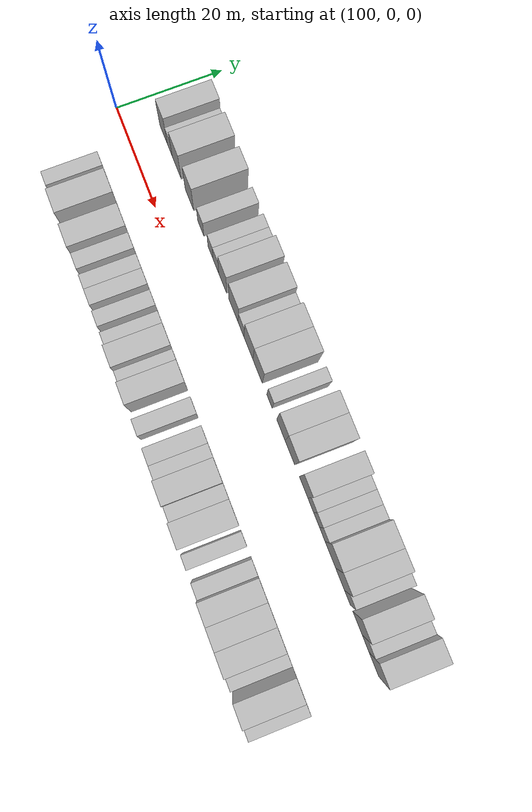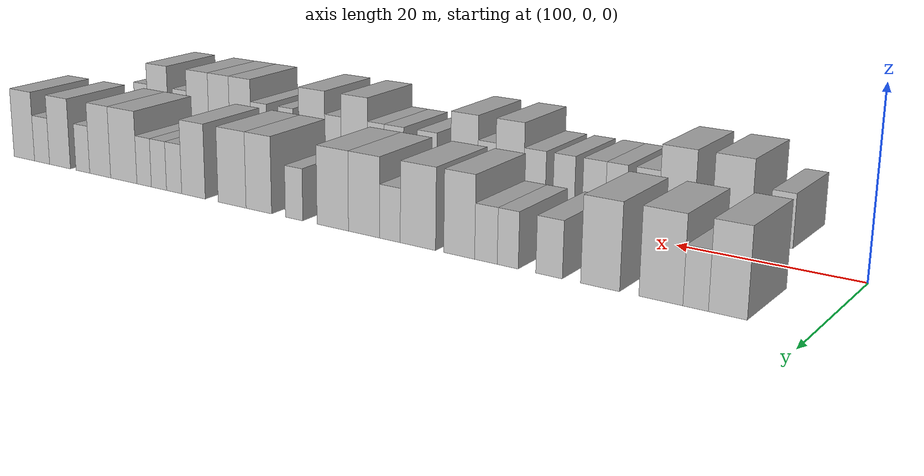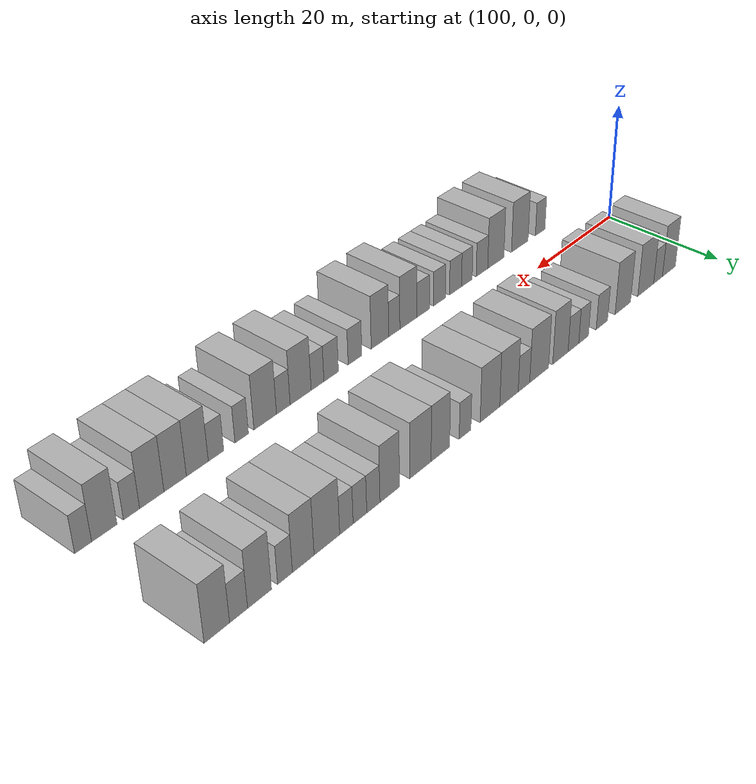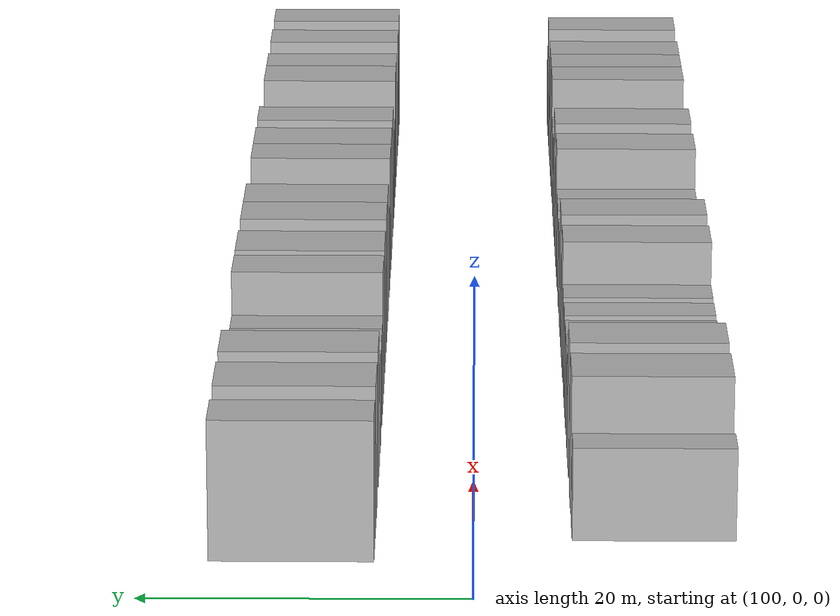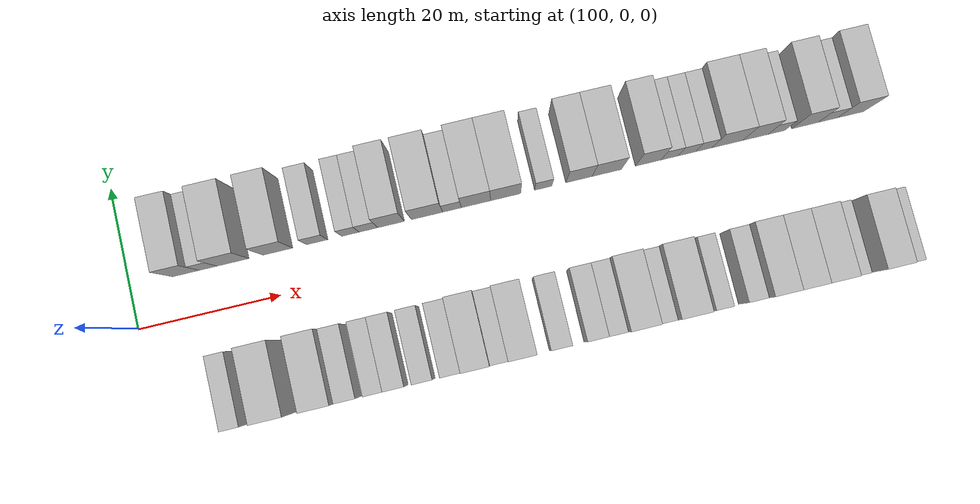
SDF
<sdf version="1.6">
 <world name="default">
  <model name="building_26">
   <static>1</static>
   <pose>107.8784 11.0000 0 0.000000 0.000000 1.570796</pose>
   <link name="link">
    <pose>0 0 4.50 0 0 0</pose>
    <collision name="collision"><geometry><box><size>10.0000 3.7609 9.0000</size></box></geometry></collision>
    <visual name="visual">
     <cast_shadows>0</cast_shadows>
     <geometry><box><size>10.0000 3.7609 9.0000</size></box></geometry>
     <material>
      <script>
       <uri>model://HANNAS_wall/materials/scripts</uri>
       <uri>model://HANNAS_wall/materials/textures</uri>
       <name>vrc/HANNAS_wall</name>
      </script>
     </material>
    </visual>
   </link>
  </model>
  <model name="building_27">
   <static>1</static>
   <pose>111.0178 11.0000 0 0.000000 0.000000 1.570796</pose>
   <link name="link">
    <pose>0 0 3.00 0 0 0</pose>
    <collision name="collision"><geometry><box><size>10.0000 2.5179 6.0000</size></box></geometry></collision>
    <visual name="visual">
     <cast_shadows>0</cast_shadows>
     <geometry><box><size>10.0000 2.5179 6.0000</size></box></geometry>
     <material>
      <script>
       <uri>model://HANNAS_wall/materials/scripts</uri>
       <uri>model://HANNAS_wall/materials/textures</uri>
       <name>vrc/HANNAS_wall</name>
      </script>
     </material>
    </visual>
   </link>
  </model>
  <model name="building_28">
   <static>1</static>
   <pose>114.5149 11.0000 0 0.000000 0.000000 1.570796</pose>
   <link name="link">
    <pose>0 0 4.50 0 0 0</pose>
    <collision name="collision"><geometry><box><size>10.0000 4.4763 9.0000</size></box></geometry></collision>
    <visual name="visual">
     <cast_shadows>0</cast_shadows>
     <geometry><box><size>10.0000 4.4763 9.0000</size></box></geometry>
     <material>
      <script>
       <uri>model://HANNAS_wall/materials/scripts</uri>
       <uri>model://HANNAS_wall/materials/textures</uri>
       <name>vrc/HANNAS_wall</name>
      </script>
     </material>
    </visual>
   </link>
  </model>
  <model name="building_29">
   <static>1</static>
   <pose>120.8508 11.0000 0 0.000000 0.000000 1.570796</pose>
   <link name="link">
    <pose>0 0 4.50 0 0 0</pose>
    <collision name="collision"><geometry><box><size>10.0000 4.1954 9.0000</size></box></geometry></collision>
    <visual name="visual">
     <cast_shadows>0</cast_shadows>
     <geometry><box><size>10.0000 4.1954 9.0000</size></box></geometry>
     <material>
      <script>
       <uri>model://HANNAS_wall/materials/scripts</uri>
       <uri>model://HANNAS_wall/materials/textures</uri>
       <name>vrc/HANNAS_wall</name>
      </script>
     </material>
    </visual>
   </link>
  </model>
  <model name="building_30">
   <static>1</static>
   <pose>126.4411 11.0000 0 0.000000 0.000000 1.570796</pose>
   <link name="link">
    <pose>0 0 3.00 0 0 0</pose>
    <collision name="collision"><geometry><box><size>10.0000 2.9852 6.0000</size></box></geometry></collision>
    <visual name="visual">
     <cast_shadows>0</cast_shadows>
     <geometry><box><size>10.0000 2.9852 6.0000</size></box></geometry>
     <material>
      <script>
       <uri>model://HANNAS_wall/materials/scripts</uri>
       <uri>model://HANNAS_wall/materials/textures</uri>
       <name>vrc/HANNAS_wall</name>
      </script>
     </material>
    </visual>
   </link>
  </model>
  <model name="building_31">
   <static>1</static>
   <pose>131.1621 11.0000 0 0.000000 0.000000 1.570796</pose>
   <link name="link">
    <pose>0 0 3.00 0 0 0</pose>
    <collision name="collision"><geometry><box><size>10.0000 2.4568 6.0000</size></box></geometry></collision>
    <visual name="visual">
     <cast_shadows>0</cast_shadows>
     <geometry><box><size>10.0000 2.4568 6.0000</size></box></geometry>
     <material>
      <script>
       <uri>model://HANNAS_wall/materials/scripts</uri>
       <uri>model://HANNAS_wall/materials/textures</uri>
       <name>vrc/HANNAS_wall</name>
      </script>
     </material>
    </visual>
   </link>
  </model>
  <model name="building_32">
   <static>1</static>
   <pose>133.7287 11.0000 0 0.000000 0.000000 1.570796</pose>
   <link name="link">
    <pose>0 0 3.00 0 0 0</pose>
    <collision name="collision"><geometry><box><size>10.0000 2.6765 6.0000</size></box></geometry></collision>
    <visual name="visual">
     <cast_shadows>0</cast_shadows>
     <geometry><box><size>10.0000 2.6765 6.0000</size></box></geometry>
     <material>
      <script>
       <uri>model://HANNAS_wall/materials/scripts</uri>
       <uri>model://HANNAS_wall/materials/textures</uri>
       <name>vrc/HANNAS_wall</name>
      </script>
     </material>
    </visual>
   </link>
  </model>
  <model name="building_33">
   <static>1</static>
   <pose>136.9477 11.0000 0 0.000000 0.000000 1.570796</pose>
   <link name="link">
    <pose>0 0 4.50 0 0 0</pose>
    <collision name="collision"><geometry><box><size>10.0000 3.7616 9.0000</size></box></geometry></collision>
    <visual name="visual">
     <cast_shadows>0</cast_shadows>
     <geometry><box><size>10.0000 3.7616 9.0000</size></box></geometry>
     <material>
      <script>
       <uri>model://HANNAS_wall/materials/scripts</uri>
       <uri>model://HANNAS_wall/materials/textures</uri>
       <name>vrc/HANNAS_wall</name>
      </script>
     </material>
    </visual>
   </link>
  </model>
  <model name="building_34">
   <static>1</static>
   <pose>142.0647 11.0000 0 0.000000 0.000000 1.570796</pose>
   <link name="link">
    <pose>0 0 4.50 0 0 0</pose>
    <collision name="collision"><geometry><box><size>10.0000 4.4724 9.0000</size></box></geometry></collision>
    <visual name="visual">
     <cast_shadows>0</cast_shadows>
     <geometry><box><size>10.0000 4.4724 9.0000</size></box></geometry>
     <material>
      <script>
       <uri>model://HANNAS_wall/materials/scripts</uri>
       <uri>model://HANNAS_wall/materials/textures</uri>
       <name>vrc/HANNAS_wall</name>
      </script>
     </material>
    </visual>
   </link>
  </model>
  <model name="building_35">
   <static>1</static>
   <pose>145.6318 11.0000 0 0.000000 0.000000 1.570796</pose>
   <link name="link">
    <pose>0 0 3.00 0 0 0</pose>
    <collision name="collision"><geometry><box><size>10.0000 2.6618 6.0000</size></box></geometry></collision>
    <visual name="visual">
     <cast_shadows>0</cast_shadows>
     <geometry><box><size>10.0000 2.6618 6.0000</size></box></geometry>
     <material>
      <script>
       <uri>model://HANNAS_wall/materials/scripts</uri>
       <uri>model://HANNAS_wall/materials/textures</uri>
       <name>vrc/HANNAS_wall</name>
      </script>
     </material>
    </visual>
   </link>
  </model>
  <model name="building_36">
   <static>1</static>
   <pose>149.0481 11.0000 0 0.000000 0.000000 1.570796</pose>
   <link name="link">
    <pose>0 0 4.50 0 0 0</pose>
    <collision name="collision"><geometry><box><size>10.0000 4.1709 9.0000</size></box></geometry></collision>
    <visual name="visual">
     <cast_shadows>0</cast_shadows>
     <geometry><box><size>10.0000 4.1709 9.0000</size></box></geometry>
     <material>
      <script>
       <uri>model://HANNAS_wall/materials/scripts</uri>
       <uri>model://HANNAS_wall/materials/textures</uri>
       <name>vrc/HANNAS_wall</name>
      </script>
     </material>
    </visual>
   </link>
  </model>
  <model name="building_37">
   <static>1</static>
   <pose>153.2878 11.0000 0 0.000000 0.000000 1.570796</pose>
   <link name="link">
    <pose>0 0 4.50 0 0 0</pose>
    <collision name="collision"><geometry><box><size>10.0000 4.3086 9.0000</size></box></geometry></collision>
    <visual name="visual">
     <cast_shadows>0</cast_shadows>
     <geometry><box><size>10.0000 4.3086 9.0000</size></box></geometry>
     <material>
      <script>
       <uri>model://HANNAS_wall/materials/scripts</uri>
       <uri>model://HANNAS_wall/materials/textures</uri>
       <name>vrc/HANNAS_wall</name>
      </script>
     </material>
    </visual>
   </link>
  </model>
  <model name="building_38">
   <static>1</static>
   <pose>158.6836 11.0000 0 0.000000 0.000000 1.570796</pose>
   <link name="link">
    <pose>0 0 3.00 0 0 0</pose>
    <collision name="collision"><geometry><box><size>10.0000 2.4830 6.0000</size></box></geometry></collision>
    <visual name="visual">
     <cast_shadows>0</cast_shadows>
     <geometry><box><size>10.0000 2.4830 6.0000</size></box></geometry>
     <material>
      <script>
       <uri>model://HANNAS_wall/materials/scripts</uri>
       <uri>model://HANNAS_wall/materials/textures</uri>
       <name>vrc/HANNAS_wall</name>
      </script>
     </material>
    </visual>
   </link>
  </model>
  <model name="building_39">
   <static>1</static>
   <pose>163.8151 11.0000 0 0.000000 0.000000 1.570796</pose>
   <link name="link">
    <pose>0 0 4.50 0 0 0</pose>
    <collision name="collision"><geometry><box><size>10.0000 3.7801 9.0000</size></box></geometry></collision>
    <visual name="visual">
     <cast_shadows>0</cast_shadows>
     <geometry><box><size>10.0000 3.7801 9.0000</size></box></geometry>
     <material>
      <script>
       <uri>model://HANNAS_wall/materials/scripts</uri>
       <uri>model://HANNAS_wall/materials/textures</uri>
       <name>vrc/HANNAS_wall</name>
      </script>
     </material>
    </visual>
   </link>
  </model>
  <model name="building_40">
   <static>1</static>
   <pose>167.8277 11.0000 0 0.000000 0.000000 1.570796</pose>
   <link name="link">
    <pose>0 0 4.50 0 0 0</pose>
    <collision name="collision"><geometry><box><size>10.0000 4.2450 9.0000</size></box></geometry></collision>
    <visual name="visual">
     <cast_shadows>0</cast_shadows>
     <geometry><box><size>10.0000 4.2450 9.0000</size></box></geometry>
     <material>
      <script>
       <uri>model://HANNAS_wall/materials/scripts</uri>
       <uri>model://HANNAS_wall/materials/textures</uri>
       <name>vrc/HANNAS_wall</name>
      </script>
     </material>
    </visual>
   </link>
  </model>
  <model name="building_41">
   <static>1</static>
   <pose>173.8152 11.0000 0 0.000000 0.000000 1.570796</pose>
   <link name="link">
    <pose>0 0 4.50 0 0 0</pose>
    <collision name="collision"><geometry><box><size>10.0000 3.7300 9.0000</size></box></geometry></collision>
    <visual name="visual">
     <cast_shadows>0</cast_shadows>
     <geometry><box><size>10.0000 3.7300 9.0000</size></box></geometry>
     <material>
      <script>
       <uri>model://HANNAS_wall/materials/scripts</uri>
       <uri>model://HANNAS_wall/materials/textures</uri>
       <name>vrc/HANNAS_wall</name>
      </script>
     </material>
    </visual>
   </link>
  </model>
  <model name="building_42">
   <static>1</static>
   <pose>176.9100 11.0000 0 0.000000 0.000000 1.570796</pose>
   <link name="link">
    <pose>0 0 3.00 0 0 0</pose>
    <collision name="collision"><geometry><box><size>10.0000 2.4594 6.0000</size></box></geometry></collision>
    <visual name="visual">
     <cast_shadows>0</cast_shadows>
     <geometry><box><size>10.0000 2.4594 6.0000</size></box></geometry>
     <material>
      <script>
       <uri>model://HANNAS_wall/materials/scripts</uri>
       <uri>model://HANNAS_wall/materials/textures</uri>
       <name>vrc/HANNAS_wall</name>
      </script>
     </material>
    </visual>
   </link>
  </model>
  <model name="building_43">
   <static>1</static>
   <pose>179.3808 11.0000 0 0.000000 0.000000 1.570796</pose>
   <link name="link">
    <pose>0 0 3.00 0 0 0</pose>
    <collision name="collision"><geometry><box><size>10.0000 2.4823 6.0000</size></box></geometry></collision>
    <visual name="visual">
     <cast_shadows>0</cast_shadows>
     <geometry><box><size>10.0000 2.4823 6.0000</size></box></geometry>
     <material>
      <script>
       <uri>model://HANNAS_wall/materials/scripts</uri>
       <uri>model://HANNAS_wall/materials/textures</uri>
       <name>vrc/HANNAS_wall</name>
      </script>
     </material>
    </visual>
   </link>
  </model>
  <model name="building_44">
   <static>1</static>
   <pose>181.8322 11.0000 0 0.000000 0.000000 1.570796</pose>
   <link name="link">
    <pose>0 0 3.00 0 0 0</pose>
    <collision name="collision"><geometry><box><size>10.0000 2.4205 6.0000</size></box></geometry></collision>
    <visual name="visual">
     <cast_shadows>0</cast_shadows>
     <geometry><box><size>10.0000 2.4205 6.0000</size></box></geometry>
     <material>
      <script>
       <uri>model://HANNAS_wall/materials/scripts</uri>
       <uri>model://HANNAS_wall/materials/textures</uri>
       <name>vrc/HANNAS_wall</name>
      </script>
     </material>
    </visual>
   </link>
  </model>
  <model name="building_45">
   <static>1</static>
   <pose>185.2819 11.0000 0 0.000000 0.000000 1.570796</pose>
   <link name="link">
    <pose>0 0 4.50 0 0 0</pose>
    <collision name="collision"><geometry><box><size>10.0000 4.4789 9.0000</size></box></geometry></collision>
    <visual name="visual">
     <cast_shadows>0</cast_shadows>
     <geometry><box><size>10.0000 4.4789 9.0000</size></box></geometry>
     <material>
      <script>
       <uri>model://HANNAS_wall/materials/scripts</uri>
       <uri>model://HANNAS_wall/materials/textures</uri>
       <name>vrc/HANNAS_wall</name>
      </script>
     </material>
    </visual>
   </link>
  </model>
  <model name="building_46">
   <static>1</static>
   <pose>189.3593 11.0000 0 0.000000 0.000000 1.570796</pose>
   <link name="link">
    <pose>0 0 4.50 0 0 0</pose>
    <collision name="collision"><geometry><box><size>10.0000 3.6759 9.0000</size></box></geometry></collision>
    <visual name="visual">
     <cast_shadows>0</cast_shadows>
     <geometry><box><size>10.0000 3.6759 9.0000</size></box></geometry>
     <material>
      <script>
       <uri>model://HANNAS_wall/materials/scripts</uri>
       <uri>model://HANNAS_wall/materials/textures</uri>
       <name>vrc/HANNAS_wall</name>
      </script>
     </material>
    </visual>
   </link>
  </model>
  <model name="building_47">
   <static>1</static>
   <pose>192.4263 11.0000 0 0.000000 0.000000 1.570796</pose>
   <link name="link">
    <pose>0 0 3.00 0 0 0</pose>
    <collision name="collision"><geometry><box><size>10.0000 2.4582 6.0000</size></box></geometry></collision>
    <visual name="visual">
     <cast_shadows>0</cast_shadows>
     <geometry><box><size>10.0000 2.4582 6.0000</size></box></geometry>
     <material>
      <script>
       <uri>model://HANNAS_wall/materials/scripts</uri>
       <uri>model://HANNAS_wall/materials/textures</uri>
       <name>vrc/HANNAS_wall</name>
      </script>
     </material>
    </visual>
   </link>
  </model>
  <model name="building_48">
   <static>1</static>
   <pose>196.5684 11.0000 0 0.000000 0.000000 1.570796</pose>
   <link name="link">
    <pose>0 0 4.50 0 0 0</pose>
    <collision name="collision"><geometry><box><size>10.0000 3.8258 9.0000</size></box></geometry></collision>
    <visual name="visual">
     <cast_shadows>0</cast_shadows>
     <geometry><box><size>10.0000 3.8258 9.0000</size></box></geometry>
     <material>
      <script>
       <uri>model://HANNAS_wall/materials/scripts</uri>
       <uri>model://HANNAS_wall/materials/textures</uri>
       <name>vrc/HANNAS_wall</name>
      </script>
     </material>
    </visual>
   </link>
  </model>
  <model name="building_49">
   <static>1</static>
   <pose>199.8844 11.0000 0 0.000000 0.000000 1.570796</pose>
   <link name="link">
    <pose>0 0 3.00 0 0 0</pose>
    <collision name="collision"><geometry><box><size>10.0000 2.8062 6.0000</size></box></geometry></collision>
    <visual name="visual">
     <cast_shadows>0</cast_shadows>
     <geometry><box><size>10.0000 2.8062 6.0000</size></box></geometry>
     <material>
      <script>
       <uri>model://HANNAS_wall/materials/scripts</uri>
       <uri>model://HANNAS_wall/materials/textures</uri>
       <name>vrc/HANNAS_wall</name>
      </script>
     </material>
    </visual>
   </link>
  </model>
  <model name="building_50">
   <static>1</static>
   <pose>203.2325 11.0000 0 0.000000 0.000000 1.570796</pose>
   <link name="link">
    <pose>0 0 4.50 0 0 0</pose>
    <collision name="collision"><geometry><box><size>10.0000 3.8901 9.0000</size></box></geometry></collision>
    <visual name="visual">
     <cast_shadows>0</cast_shadows>
     <geometry><box><size>10.0000 3.8901 9.0000</size></box></geometry>
     <material>
      <script>
       <uri>model://HANNAS_wall/materials/scripts</uri>
       <uri>model://HANNAS_wall/materials/textures</uri>
       <name>vrc/HANNAS_wall</name>
      </script>
     </material>
    </visual>
   </link>
  </model>
  <model name="building_76">
   <static>1</static>
   <pose>110.9872 -11.0000 0 0.000000 0.000000 1.570796</pose>
   <link name="link">
    <pose>0 0 3.00 0 0 0</pose>
    <collision name="collision"><geometry><box><size>10.0000 2.6245 6.0000</size></box></geometry></collision>
    <visual name="visual">
     <cast_shadows>0</cast_shadows>
     <geometry><box><size>10.0000 2.6245 6.0000</size></box></geometry>
     <material>
      <script>
       <uri>model://HANNAS_wall/materials/scripts</uri>
       <uri>model://HANNAS_wall/materials/textures</uri>
       <name>vrc/HANNAS_wall</name>
      </script>
     </material>
    </visual>
   </link>
  </model>
  <model name="building_77">
   <static>1</static>
   <pose>116.5064 -11.0000 0 0.000000 0.000000 1.570796</pose>
   <link name="link">
    <pose>0 0 4.50 0 0 0</pose>
    <collision name="collision"><geometry><box><size>10.0000 4.4139 9.0000</size></box></geometry></collision>
    <visual name="visual">
     <cast_shadows>0</cast_shadows>
     <geometry><box><size>10.0000 4.4139 9.0000</size></box></geometry>
     <material>
      <script>
       <uri>model://HANNAS_wall/materials/scripts</uri>
       <uri>model://HANNAS_wall/materials/textures</uri>
       <name>vrc/HANNAS_wall</name>
      </script>
     </material>
    </visual>
   </link>
  </model>
  <model name="building_78">
   <static>1</static>
   <pose>122.7905 -11.0000 0 0.000000 0.000000 1.570796</pose>
   <link name="link">
    <pose>0 0 4.50 0 0 0</pose>
    <collision name="collision"><geometry><box><size>10.0000 4.1544 9.0000</size></box></geometry></collision>
    <visual name="visual">
     <cast_shadows>0</cast_shadows>
     <geometry><box><size>10.0000 4.1544 9.0000</size></box></geometry>
     <material>
      <script>
       <uri>model://HANNAS_wall/materials/scripts</uri>
       <uri>model://HANNAS_wall/materials/textures</uri>
       <name>vrc/HANNAS_wall</name>
      </script>
     </material>
    </visual>
   </link>
  </model>
  <model name="building_79">
   <static>1</static>
   <pose>126.3232 -11.0000 0 0.000000 0.000000 1.570796</pose>
   <link name="link">
    <pose>0 0 3.00 0 0 0</pose>
    <collision name="collision"><geometry><box><size>10.0000 2.9110 6.0000</size></box></geometry></collision>
    <visual name="visual">
     <cast_shadows>0</cast_shadows>
     <geometry><box><size>10.0000 2.9110 6.0000</size></box></geometry>
     <material>
      <script>
       <uri>model://HANNAS_wall/materials/scripts</uri>
       <uri>model://HANNAS_wall/materials/textures</uri>
       <name>vrc/HANNAS_wall</name>
      </script>
     </material>
    </visual>
   </link>
  </model>
  <model name="building_80">
   <static>1</static>
   <pose>130.0869 -11.0000 0 0.000000 0.000000 1.570796</pose>
   <link name="link">
    <pose>0 0 3.00 0 0 0</pose>
    <collision name="collision"><geometry><box><size>10.0000 2.6163 6.0000</size></box></geometry></collision>
    <visual name="visual">
     <cast_shadows>0</cast_shadows>
     <geometry><box><size>10.0000 2.6163 6.0000</size></box></geometry>
     <material>
      <script>
       <uri>model://HANNAS_wall/materials/scripts</uri>
       <uri>model://HANNAS_wall/materials/textures</uri>
       <name>vrc/HANNAS_wall</name>
      </script>
     </material>
    </visual>
   </link>
  </model>
  <model name="building_81">
   <static>1</static>
   <pose>132.8507 -11.0000 0 0.000000 0.000000 1.570796</pose>
   <link name="link">
    <pose>0 0 3.00 0 0 0</pose>
    <collision name="collision"><geometry><box><size>10.0000 2.9112 6.0000</size></box></geometry></collision>
    <visual name="visual">
     <cast_shadows>0</cast_shadows>
     <geometry><box><size>10.0000 2.9112 6.0000</size></box></geometry>
     <material>
      <script>
       <uri>model://HANNAS_wall/materials/scripts</uri>
       <uri>model://HANNAS_wall/materials/textures</uri>
       <name>vrc/HANNAS_wall</name>
      </script>
     </material>
    </visual>
   </link>
  </model>
  <model name="building_82">
   <static>1</static>
   <pose>136.6994 -11.0000 0 0.000000 0.000000 1.570796</pose>
   <link name="link">
    <pose>0 0 3.00 0 0 0</pose>
    <collision name="collision"><geometry><box><size>10.0000 2.7862 6.0000</size></box></geometry></collision>
    <visual name="visual">
     <cast_shadows>0</cast_shadows>
     <geometry><box><size>10.0000 2.7862 6.0000</size></box></geometry>
     <material>
      <script>
       <uri>model://HANNAS_wall/materials/scripts</uri>
       <uri>model://HANNAS_wall/materials/textures</uri>
       <name>vrc/HANNAS_wall</name>
      </script>
     </material>
    </visual>
   </link>
  </model>
  <model name="building_83">
   <static>1</static>
   <pose>140.5440 -11.0000 0 0.000000 0.000000 1.570796</pose>
   <link name="link">
    <pose>0 0 3.00 0 0 0</pose>
    <collision name="collision"><geometry><box><size>10.0000 2.9031 6.0000</size></box></geometry></collision>
    <visual name="visual">
     <cast_shadows>0</cast_shadows>
     <geometry><box><size>10.0000 2.9031 6.0000</size></box></geometry>
     <material>
      <script>
       <uri>model://HANNAS_wall/materials/scripts</uri>
       <uri>model://HANNAS_wall/materials/textures</uri>
       <name>vrc/HANNAS_wall</name>
      </script>
     </material>
    </visual>
   </link>
  </model>
  <model name="building_84">
   <static>1</static>
   <pose>143.9150 -11.0000 0 0.000000 0.000000 1.570796</pose>
   <link name="link">
    <pose>0 0 4.50 0 0 0</pose>
    <collision name="collision"><geometry><box><size>10.0000 3.8388 9.0000</size></box></geometry></collision>
    <visual name="visual">
     <cast_shadows>0</cast_shadows>
     <geometry><box><size>10.0000 3.8388 9.0000</size></box></geometry>
     <material>
      <script>
       <uri>model://HANNAS_wall/materials/scripts</uri>
       <uri>model://HANNAS_wall/materials/textures</uri>
       <name>vrc/HANNAS_wall</name>
      </script>
     </material>
    </visual>
   </link>
  </model>
  <model name="building_85">
   <static>1</static>
   <pose>147.0641 -11.0000 0 0.000000 0.000000 1.570796</pose>
   <link name="link">
    <pose>0 0 3.00 0 0 0</pose>
    <collision name="collision"><geometry><box><size>10.0000 2.4593 6.0000</size></box></geometry></collision>
    <visual name="visual">
     <cast_shadows>0</cast_shadows>
     <geometry><box><size>10.0000 2.4593 6.0000</size></box></geometry>
     <material>
      <script>
       <uri>model://HANNAS_wall/materials/scripts</uri>
       <uri>model://HANNAS_wall/materials/textures</uri>
       <name>vrc/HANNAS_wall</name>
      </script>
     </material>
    </visual>
   </link>
  </model>
  <model name="building_86">
   <static>1</static>
   <pose>150.2099 -11.0000 0 0.000000 0.000000 1.570796</pose>
   <link name="link">
    <pose>0 0 4.50 0 0 0</pose>
    <collision name="collision"><geometry><box><size>10.0000 3.8323 9.0000</size></box></geometry></collision>
    <visual name="visual">
     <cast_shadows>0</cast_shadows>
     <geometry><box><size>10.0000 3.8323 9.0000</size></box></geometry>
     <material>
      <script>
       <uri>model://HANNAS_wall/materials/scripts</uri>
       <uri>model://HANNAS_wall/materials/textures</uri>
       <name>vrc/HANNAS_wall</name>
      </script>
     </material>
    </visual>
   </link>
  </model>
  <model name="building_87">
   <static>1</static>
   <pose>155.5781 -11.0000 0 0.000000 0.000000 1.570796</pose>
   <link name="link">
    <pose>0 0 3.00 0 0 0</pose>
    <collision name="collision"><geometry><box><size>10.0000 2.9042 6.0000</size></box></geometry></collision>
    <visual name="visual">
     <cast_shadows>0</cast_shadows>
     <geometry><box><size>10.0000 2.9042 6.0000</size></box></geometry>
     <material>
      <script>
       <uri>model://HANNAS_wall/materials/scripts</uri>
       <uri>model://HANNAS_wall/materials/textures</uri>
       <name>vrc/HANNAS_wall</name>
      </script>
     </material>
    </visual>
   </link>
  </model>
  <model name="building_88">
   <static>1</static>
   <pose>160.5120 -11.0000 0 0.000000 0.000000 1.570796</pose>
   <link name="link">
    <pose>0 0 3.00 0 0 0</pose>
    <collision name="collision"><geometry><box><size>10.0000 2.9636 6.0000</size></box></geometry></collision>
    <visual name="visual">
     <cast_shadows>0</cast_shadows>
     <geometry><box><size>10.0000 2.9636 6.0000</size></box></geometry>
     <material>
      <script>
       <uri>model://HANNAS_wall/materials/scripts</uri>
       <uri>model://HANNAS_wall/materials/textures</uri>
       <name>vrc/HANNAS_wall</name>
      </script>
     </material>
    </visual>
   </link>
  </model>
  <model name="building_89">
   <static>1</static>
   <pose>163.2704 -11.0000 0 0.000000 0.000000 1.570796</pose>
   <link name="link">
    <pose>0 0 3.00 0 0 0</pose>
    <collision name="collision"><geometry><box><size>10.0000 2.5533 6.0000</size></box></geometry></collision>
    <visual name="visual">
     <cast_shadows>0</cast_shadows>
     <geometry><box><size>10.0000 2.5533 6.0000</size></box></geometry>
     <material>
      <script>
       <uri>model://HANNAS_wall/materials/scripts</uri>
       <uri>model://HANNAS_wall/materials/textures</uri>
       <name>vrc/HANNAS_wall</name>
      </script>
     </material>
    </visual>
   </link>
  </model>
  <model name="building_90">
   <static>1</static>
   <pose>166.6089 -11.0000 0 0.000000 0.000000 1.570796</pose>
   <link name="link">
    <pose>0 0 4.50 0 0 0</pose>
    <collision name="collision"><geometry><box><size>10.0000 4.1235 9.0000</size></box></geometry></collision>
    <visual name="visual">
     <cast_shadows>0</cast_shadows>
     <geometry><box><size>10.0000 4.1235 9.0000</size></box></geometry>
     <material>
      <script>
       <uri>model://HANNAS_wall/materials/scripts</uri>
       <uri>model://HANNAS_wall/materials/textures</uri>
       <name>vrc/HANNAS_wall</name>
      </script>
     </material>
    </visual>
   </link>
  </model>
  <model name="building_91">
   <static>1</static>
   <pose>169.9734 -11.0000 0 0.000000 0.000000 1.570796</pose>
   <link name="link">
    <pose>0 0 3.00 0 0 0</pose>
    <collision name="collision"><geometry><box><size>10.0000 2.6056 6.0000</size></box></geometry></collision>
    <visual name="visual">
     <cast_shadows>0</cast_shadows>
     <geometry><box><size>10.0000 2.6056 6.0000</size></box></geometry>
     <material>
      <script>
       <uri>model://HANNAS_wall/materials/scripts</uri>
       <uri>model://HANNAS_wall/materials/textures</uri>
       <name>vrc/HANNAS_wall</name>
      </script>
     </material>
    </visual>
   </link>
  </model>
  <model name="building_92">
   <static>1</static>
   <pose>173.3949 -11.0000 0 0.000000 0.000000 1.570796</pose>
   <link name="link">
    <pose>0 0 4.50 0 0 0</pose>
    <collision name="collision"><geometry><box><size>10.0000 4.2375 9.0000</size></box></geometry></collision>
    <visual name="visual">
     <cast_shadows>0</cast_shadows>
     <geometry><box><size>10.0000 4.2375 9.0000</size></box></geometry>
     <material>
      <script>
       <uri>model://HANNAS_wall/materials/scripts</uri>
       <uri>model://HANNAS_wall/materials/textures</uri>
       <name>vrc/HANNAS_wall</name>
      </script>
     </material>
    </visual>
   </link>
  </model>
  <model name="building_93">
   <static>1</static>
   <pose>177.7394 -11.0000 0 0.000000 0.000000 1.570796</pose>
   <link name="link">
    <pose>0 0 3.00 0 0 0</pose>
    <collision name="collision"><geometry><box><size>10.0000 2.4515 6.0000</size></box></geometry></collision>
    <visual name="visual">
     <cast_shadows>0</cast_shadows>
     <geometry><box><size>10.0000 2.4515 6.0000</size></box></geometry>
     <material>
      <script>
       <uri>model://HANNAS_wall/materials/scripts</uri>
       <uri>model://HANNAS_wall/materials/textures</uri>
       <name>vrc/HANNAS_wall</name>
      </script>
     </material>
    </visual>
   </link>
  </model>
  <model name="building_94">
   <static>1</static>
   <pose>182.3251 -11.0000 0 0.000000 0.000000 1.570796</pose>
   <link name="link">
    <pose>0 0 3.00 0 0 0</pose>
    <collision name="collision"><geometry><box><size>10.0000 2.7198 6.0000</size></box></geometry></collision>
    <visual name="visual">
     <cast_shadows>0</cast_shadows>
     <geometry><box><size>10.0000 2.7198 6.0000</size></box></geometry>
     <material>
      <script>
       <uri>model://HANNAS_wall/materials/scripts</uri>
       <uri>model://HANNAS_wall/materials/textures</uri>
       <name>vrc/HANNAS_wall</name>
      </script>
     </material>
    </visual>
   </link>
  </model>
  <model name="building_95">
   <static>1</static>
   <pose>185.5699 -11.0000 0 0.000000 0.000000 1.570796</pose>
   <link name="link">
    <pose>0 0 4.50 0 0 0</pose>
    <collision name="collision"><geometry><box><size>10.0000 3.7698 9.0000</size></box></geometry></collision>
    <visual name="visual">
     <cast_shadows>0</cast_shadows>
     <geometry><box><size>10.0000 3.7698 9.0000</size></box></geometry>
     <material>
      <script>
       <uri>model://HANNAS_wall/materials/scripts</uri>
       <uri>model://HANNAS_wall/materials/textures</uri>
       <name>vrc/HANNAS_wall</name>
      </script>
     </material>
    </visual>
   </link>
  </model>
  <model name="building_96">
   <static>1</static>
   <pose>189.3299 -11.0000 0 0.000000 0.000000 1.570796</pose>
   <link name="link">
    <pose>0 0 4.50 0 0 0</pose>
    <collision name="collision"><geometry><box><size>10.0000 3.7503 9.0000</size></box></geometry></collision>
    <visual name="visual">
     <cast_shadows>0</cast_shadows>
     <geometry><box><size>10.0000 3.7503 9.0000</size></box></geometry>
     <material>
      <script>
       <uri>model://HANNAS_wall/materials/scripts</uri>
       <uri>model://HANNAS_wall/materials/textures</uri>
       <name>vrc/HANNAS_wall</name>
      </script>
     </material>
    </visual>
   </link>
  </model>
  <model name="building_97">
   <static>1</static>
   <pose>193.1919 -11.0000 0 0.000000 0.000000 1.570796</pose>
   <link name="link">
    <pose>0 0 4.50 0 0 0</pose>
    <collision name="collision"><geometry><box><size>10.0000 3.9735 9.0000</size></box></geometry></collision>
    <visual name="visual">
     <cast_shadows>0</cast_shadows>
     <geometry><box><size>10.0000 3.9735 9.0000</size></box></geometry>
     <material>
      <script>
       <uri>model://HANNAS_wall/materials/scripts</uri>
       <uri>model://HANNAS_wall/materials/textures</uri>
       <name>vrc/HANNAS_wall</name>
      </script>
     </material>
    </visual>
   </link>
  </model>
  <model name="building_98">
   <static>1</static>
   <pose>196.4722 -11.0000 0 0.000000 0.000000 1.570796</pose>
   <link name="link">
    <pose>0 0 3.00 0 0 0</pose>
    <collision name="collision"><geometry><box><size>10.0000 2.5871 6.0000</size></box></geometry></collision>
    <visual name="visual">
     <cast_shadows>0</cast_shadows>
     <geometry><box><size>10.0000 2.5871 6.0000</size></box></geometry>
     <material>
      <script>
       <uri>model://HANNAS_wall/materials/scripts</uri>
       <uri>model://HANNAS_wall/materials/textures</uri>
       <name>vrc/HANNAS_wall</name>
      </script>
     </material>
    </visual>
   </link>
  </model>
  <model name="building_99">
   <static>1</static>
   <pose>200.7176 -11.0000 0 0.000000 0.000000 1.570796</pose>
   <link name="link">
    <pose>0 0 4.50 0 0 0</pose>
    <collision name="collision"><geometry><box><size>10.0000 3.9038 9.0000</size></box></geometry></collision>
    <visual name="visual">
     <cast_shadows>0</cast_shadows>
     <geometry><box><size>10.0000 3.9038 9.0000</size></box></geometry>
     <material>
      <script>
       <uri>model://HANNAS_wall/materials/scripts</uri>
       <uri>model://HANNAS_wall/materials/textures</uri>
       <name>vrc/HANNAS_wall</name>
      </script>
     </material>
    </visual>
   </link>
  </model>
  <model name="building_100">
   <static>1</static>
   <pose>203.9492 -11.0000 0 0.000000 0.000000 1.570796</pose>
   <link name="link">
    <pose>0 0 3.00 0 0 0</pose>
    <collision name="collision"><geometry><box><size>10.0000 2.5594 6.0000</size></box></geometry></collision>
    <visual name="visual">
     <cast_shadows>0</cast_shadows>
     <geometry><box><size>10.0000 2.5594 6.0000</size></box></geometry>
     <material>
      <script>
       <uri>model://HANNAS_wall/materials/scripts</uri>
       <uri>model://HANNAS_wall/materials/textures</uri>
       <name>vrc/HANNAS_wall</name>
      </script>
     </material>
    </visual>
   </link>
  </model>
 </world>
</sdf>
